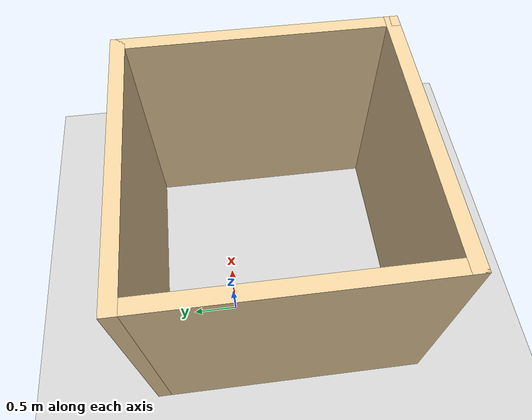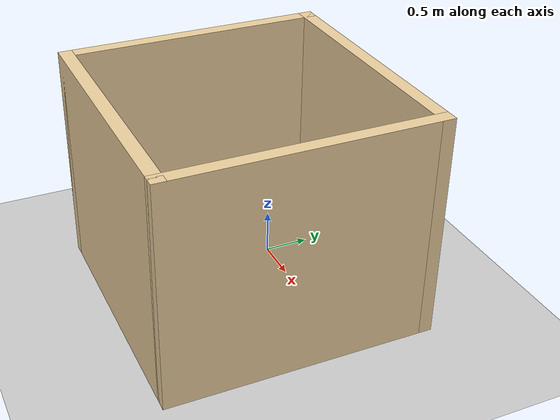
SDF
<sdf version="1.7">
 <world name="default">
  <light name="sun" type="directional">
   <pose>0 0 10 0 -0 0</pose>
   <diffuse>0.8 0.8 0.8 1</diffuse>
   <specular>0.2 0.2 0.2 1</specular>
   <attenuation>
    <range>1000</range>
    <constant>0.9</constant>
    <linear>0.01</linear>
    <quadratic>0.001</quadratic>
   </attenuation>
   <direction>-0.5 0.1 -0.9</direction>
   <spot><inner_angle>0</inner_angle><outer_angle>0</outer_angle><falloff>0</falloff></spot>
  </light>
  <model name="ground_plane">
   <static>1</static>
   <link name="link">
    <collision name="collision">
     <geometry><plane><normal>0 0 1</normal><size>100 100</size></plane></geometry>
    </collision>
    <visual name="visual">
     <geometry><plane><normal>0 0 1</normal><size>100 100</size></plane></geometry>
     <material>
      <script><uri>file://media/materials/scripts/gazebo.material</uri><name>Gazebo/Grey</name></script>
     </material>
    </visual>
   </link>
  </model>
  <scene><ambient>0.4 0.4 0.4 1</ambient><background>0.7 0.7 0.7 1</background><shadows>1</shadows></scene>
  <physics type="ode">
   <max_step_size>0.001</max_step_size>
   <real_time_factor>1</real_time_factor>
   <real_time_update_rate>1000</real_time_update_rate>
  </physics>
  <gravity>0 0 -9.8</gravity>
  <magnetic_field>6e-06 2.3e-05 -4.2e-05</magnetic_field>
  <atmosphere type="adiabatic"/>
  <spherical_coordinates>
   <surface_model>EARTH_WGS84</surface_model>
   <latitude_deg>0</latitude_deg>
   <longitude_deg>0</longitude_deg>
   <elevation>0</elevation>
   <heading_deg>0</heading_deg>
  </spherical_coordinates>
  <model name="walls">
   <pose>0.547 0.009221 0 0 -0 0</pose>
   <link name="Wall_1">
    <collision name="Wall_1_Collision">
     <geometry><box><size>3 0.15 2.5</size></box></geometry>
     <pose>0 0 1.25 0 -0 0</pose>
    </collision>
    <visual name="Wall_1_Visual">
     <pose>0 0 1.25 0 -0 0</pose>
     <geometry><box><size>3 0.15 2.5</size></box></geometry>
     <material>
      <script><uri>file://media/materials/scripts/gazebo.material</uri><name>Gazebo/Grey</name></script>
      <ambient>0.921569 0.807843 0.615686 1</ambient>
     </material>
     <meta><layer>0</layer></meta>
    </visual>
    <pose>-1.425 -0.5525 0 0 -0 -1.5708</pose>
   </link>
   <link name="Wall_2">
    <collision name="Wall_2_Collision">
     <geometry><box><size>3 0.15 2.5</size></box></geometry>
     <pose>0 0 1.25 0 -0 0</pose>
    </collision>
    <visual name="Wall_2_Visual">
     <pose>0 0 1.25 0 -0 0</pose>
     <geometry><box><size>3 0.15 2.5</size></box></geometry>
     <material>
      <script><uri>file://media/materials/scripts/gazebo.material</uri><name>Gazebo/Grey</name></script>
      <ambient>0.921569 0.807843 0.615686 1</ambient>
     </material>
     <meta><layer>0</layer></meta>
    </visual>
    <pose>0 -1.9775 0 0 -0 0</pose>
   </link>
   <link name="Wall_3">
    <collision name="Wall_3_Collision">
     <geometry><box><size>3 0.15 2.5</size></box></geometry>
     <pose>0 0 1.25 0 -0 0</pose>
    </collision>
    <visual name="Wall_3_Visual">
     <pose>0 0 1.25 0 -0 0</pose>
     <geometry><box><size>3 0.15 2.5</size></box></geometry>
     <material>
      <script><uri>file://media/materials/scripts/gazebo.material</uri><name>Gazebo/Grey</name></script>
      <ambient>0.921569 0.807843 0.615686 1</ambient>
     </material>
     <meta><layer>0</layer></meta>
    </visual>
    <pose>1.425 -0.5525 0 0 -0 1.5708</pose>
   </link>
   <link name="Wall_4">
    <collision name="Wall_4_Collision">
     <geometry><box><size>3 0.15 2.5</size></box></geometry>
     <pose>0 0 1.25 0 -0 0</pose>
    </collision>
    <visual name="Wall_4_Visual">
     <pose>0 0 1.25 0 -0 0</pose>
     <geometry><box><size>3 0.15 2.5</size></box></geometry>
     <material>
      <script><uri>file://media/materials/scripts/gazebo.material</uri><name>Gazebo/Grey</name></script>
      <ambient>0.921569 0.807843 0.615686 1</ambient>
     </material>
     <meta><layer>0</layer></meta>
    </visual>
    <pose>0 0.8725 0 0 -0 3.14159</pose>
   </link>
   <static>1</static>
  </model>
 </world>
</sdf>
